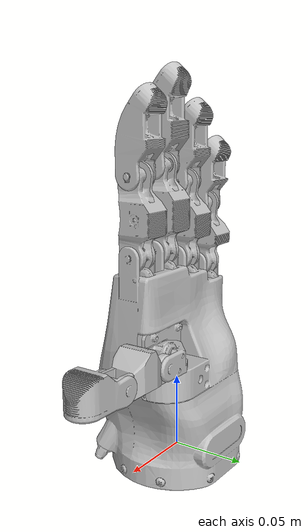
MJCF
<mujoco model="left_schunk_sih_hand-manipulator">
    <compiler angle="radian" meshdir="assets/left" autolimits="true"/>

    <default>
    <default class="left_hand">
      <mesh scale="0.001 0.001 0.001"/>
      <joint axis="1 0 0" damping="0.05" armature="0.0002" frictionloss="0.01"/>
      <position forcerange="-1 1"/>

      <default class="wrist">
        <joint damping="0.5"/>
        <default class="wrist_y">
          <joint axis="0 -1 0" range="-0.523599 0.174533"/>
          <position kp="10" ctrlrange="-0.523599 0.174533" forcerange="-10 10"/>
        </default>
        <default class="wrist_x">
          <joint range="-0.698132 0.488692"/>
          <position kp="8" ctrlrange="-0.698132 0.488692" forcerange="-5 5"/>
        </default>
      </default>

      <default class="thumb">
        <default class="thbase">
          <joint axis="0 0 1" range="-1.0472 1.0472"/>
          <position kp="0.4" ctrlrange="-1.0472 1.0472" forcerange="-3 3"/>
        </default>
        <default class="thproximal">
          <joint axis="-1 0 0" range="0 1.22173"/>
          <position ctrlrange="0 1.22173" forcerange="-2 2"/>
        </default>
        <default class="thhub">
          <joint axis="-1 0 0" range="-0.20944 0.20944"/>
          <position kp="0.5" ctrlrange="-0.20944 0.20944"/>
        </default>
        <default class="thmiddle">
          <joint axis="0 -1 0" range="-0.698132 0.698132"/>
          <position kp="1.5" ctrlrange="-0.698132 0.698132"/>
        </default>
        <default class="thdistal">
          <joint range="-0.261799 1.5708"/>
          <position ctrlrange="-0.261799 1.5708"/>
        </default>
      </default>

      <default class="metacarpal">
        <joint axis="0.573576 0 0.819152" range="0 0.785398"/>
        <position ctrlrange="0 0.785398"/>
      </default>
      <default class="knuckle">
        <joint axis="0 -1 0" range="-0.349066 0.349066"/>
        <position ctrlrange="-0.349066 0.349066"/>
      </default>
      <default class="proximal">
        <joint range="-0.261799 1.5708"/>
        <position ctrlrange="-0.261799 1.5708"/>
      </default>
      <default class="middle_distal">
        <joint range="0 1.5708"/>
        <position kp="0.5" ctrlrange="0 3.1415"/>
      </default>

      <default class="plastic">
        <geom solimp="0.5 0.99 0.0001" solref="0.005 1"/>
        <default class="plastic_visual">
          <geom type="mesh" material="black" contype="0" conaffinity="0" group="2"/>
        </default>
        <default class="plastic_collision">
          <geom group="3"/>
        </default>
      </default>
    </default>
  </default>

    <asset>
        <mesh name="palm" file="palm.stl" scale="0.001 0.001 0.001" />
        <mesh name="if_proximal" file="if_proximal.stl" scale="0.001 0.001 0.001" />
        <mesh name="if_distal" file="if_distal.stl" scale="0.001 0.001 0.001" />
        <mesh name="mf_proximal" file="mf_proximal.stl" scale="0.001 0.001 0.001" />
        <mesh name="mf_distal" file="mf_distal.stl" scale="0.001 0.001 0.001" />
        <mesh name="rf_proximal" file="rf_proximal.stl" scale="0.001 0.001 0.001" />
        <mesh name="rf_distal" file="rf_distal.stl" scale="0.001 0.001 0.001" />
        <mesh name="lf_proximal" file="lf_proximal.stl" scale="0.001 0.001 0.001" />
        <mesh name="lf_distal" file="lf_distal.stl" scale="0.001 0.001 0.001" />
        <mesh name="th_proximal" file="th_proximal.stl" scale="0.001 0.001 0.001" />
        <mesh name="th_inter" file="th_inter.stl" scale="0.001 0.001 0.001" />
        <mesh name="th_inter_cvx" file="th_inter_cvx.stl" scale="0.001 0.001 0.001" />
        <mesh name="th_distal" file="th_distal.stl" scale="0.001 0.001 0.001" />
    </asset>

    <worldbody>
        <geom type="mesh" contype="0" conaffinity="0" group="1" rgba="0.75 0.75 0.75 1" mesh="palm" />
        <geom type="mesh" rgba="0.75 0.75 0.75 1" mesh="palm" />
        <body name="if_proximal" pos="0.0435 0 0.141">
            <inertial pos="0 0 0" quat="0.820473 0.339851 -0.17592 0.424708" mass="0.1" diaginertia="0.0001 0.0001 0.0001" />
            <joint name="palm_to_if_proximal" pos="0 0 0" axis="1 0 0" limited="true" range="-1.571 0" damping="0.1" />
            <geom pos="-0.0435 0 -0.141" type="mesh" contype="0" conaffinity="0" group="1" rgba="0.75 0.75 0.75 1" mesh="if_proximal" />
            <geom pos="-0.0435 0 -0.141" type="mesh" rgba="0.75 0.75 0.75 1" mesh="if_proximal" />
            <body name="if_distal" pos="0 0 0.048">
                <inertial pos="0 0 0" quat="0.820473 0.339851 -0.17592 0.424708" mass="0.1" diaginertia="0.0001 0.0001 0.0001" />
                <joint name="if_proximal_to_if_distal" pos="0 0 0" axis="1 0 0" limited="true" range="-1.571 0" damping="0.1" />
                <geom pos="-0.0435 0 -0.189" type="mesh" contype="0" conaffinity="0" group="1" rgba="0.75 0.75 0.75 1" mesh="if_distal" />
                <geom pos="-0.0435 0 -0.189" type="mesh" rgba="0.75 0.75 0.75 1" mesh="if_distal" />
            </body>
        </body>
        <body name="mf_proximal" pos="0.0187 0 0.141">
            <inertial pos="0 0 0" quat="0.820473 0.339851 -0.17592 0.424708" mass="0.1" diaginertia="0.0001 0.0001 0.0001" />
            <joint name="palm_to_mf_proximal" pos="0 0 0" axis="1 0 0" limited="true" range="-1.571 0" damping="0.1" />
            <geom pos="-0.0187 0 -0.141" type="mesh" contype="0" conaffinity="0" group="1" rgba="0.75 0.75 0.75 1" mesh="mf_proximal" />
            <geom pos="-0.0187 0 -0.141" type="mesh" rgba="0.75 0.75 0.75 1" mesh="mf_proximal" />
            <body name="mf_distal" pos="0 0 0.0525">
                <inertial pos="0 0 0" quat="0.820473 0.339851 -0.17592 0.424708" mass="0.1" diaginertia="0.0001 0.0001 0.0001" />
                <joint name="mf_proximal_to_mf_distal" pos="0 0 0" axis="1 0 0" limited="true" range="-1.571 0" damping="0.1" />
                <geom pos="-0.0187 0 -0.1935" type="mesh" contype="0" conaffinity="0" group="1" rgba="0.75 0.75 0.75 1" mesh="mf_distal" />
                <geom pos="-0.0187 0 -0.1935" type="mesh" rgba="0.75 0.75 0.75 1" mesh="mf_distal" />
            </body>
        </body>
        <body name="rf_proximal" pos="-0.0069 0 0.134">
            <inertial pos="0 0 0" quat="0.820473 0.339851 -0.17592 0.424708" mass="0.1" diaginertia="0.0001 0.0001 0.0001" />
            <joint name="palm_to_rf_proximal" pos="0 0 0" axis="1 0 0" limited="true" range="-1.571 0" damping="0.1" />
            <geom pos="0.0069 0 -0.134" type="mesh" contype="0" conaffinity="0" group="1" rgba="0.75 0.75 0.75 1" mesh="rf_proximal" />
            <geom pos="0.0069 0 -0.134" type="mesh" rgba="0.75 0.75 0.75 1" mesh="rf_proximal" />
            <body name="rf_distal" pos="0 0 0.048">
                <inertial pos="0 0 0" quat="0.820473 0.339851 -0.17592 0.424708" mass="0.1" diaginertia="0.0001 0.0001 0.0001" />
                <joint name="rf_proximal_to_rf_distal" pos="0 0 0" axis="1 0 0" limited="true" range="-1.571 0" damping="0.1" />
                <geom pos="0.0069 0 -0.182" type="mesh" contype="0" conaffinity="0" group="1" rgba="0.75 0.75 0.75 1" mesh="rf_distal" />
                <geom pos="0.0069 0 -0.182" type="mesh" rgba="0.75 0.75 0.75 1" mesh="rf_distal" />
            </body>
        </body>
        <body name="lf_proximal" pos="-0.032 0 0.1254">
            <inertial pos="0 0 0" quat="0.820473 0.339851 -0.17592 0.424708" mass="0.1" diaginertia="0.0001 0.0001 0.0001" />
            <joint name="palm_to_lf_proximal" pos="0 0 0" axis="1 0 0" limited="true" range="-1.571 0" damping="0.1" />
            <geom pos="0.032 0 -0.1254" type="mesh" contype="0" conaffinity="0" group="1" rgba="0.75 0.75 0.75 1" mesh="lf_proximal" />
            <geom pos="0.032 0 -0.1254" type="mesh" rgba="0.75 0.75 0.75 1" mesh="lf_proximal" />
            <body name="lf_distal" pos="0 0 0.0401">
                <inertial pos="0 0 0" quat="0.820473 0.339851 -0.17592 0.424708" mass="0.1" diaginertia="0.0001 0.0001 0.0001" />
                <joint name="lf_proximal_to_lf_distal" pos="0 0 0" axis="1 0 0" limited="true" range="-1.571 0" damping="0.1" />
                <geom pos="0.032 0 -0.1655" type="mesh" contype="0" conaffinity="0" group="1" rgba="0.75 0.75 0.75 1" mesh="lf_distal" />
                <geom pos="0.032 0 -0.1655" type="mesh" rgba="0.75 0.75 0.75 1" mesh="lf_distal" />
            </body>
        </body>
        <body name="th_proximal" pos="0.034 0.019 0.08">
            <inertial pos="0 0 0" quat="0.820473 0.339851 -0.17592 0.424708" mass="0.1" diaginertia="0.0001 0.0001 0.0001" />
            <joint name="palm_to_th_proximal" pos="0 0 0" axis="0 0 1" limited="true" range="0 1.571" damping="0.1" />
            <geom pos="-0.034 -0.019 -0.08" type="mesh" contype="0" conaffinity="0" group="1" rgba="0.75 0.75 0.75 1" mesh="th_proximal" />
            <geom pos="-0.034 -0.019 -0.08" type="mesh" rgba="0.75 0.75 0.75 1" mesh="th_proximal" />
            <body name="th_inter" pos="0.024 0.005 0.001">
                <inertial pos="0 0 0" quat="0.820473 0.339851 -0.17592 0.424708" mass="0.1" diaginertia="0.0001 0.0001 0.0001" />
                <joint name="th_proximal_to_th_inter" pos="0 0 0" axis="0 1 0" limited="true" range="-1.571 0" damping="0.1" />
                <geom pos="-0.058 -0.024 -0.081" type="mesh" contype="0" conaffinity="0" group="1" rgba="0.75 0.75 0.75 1" mesh="th_inter" />
                <geom pos="-0.058 -0.024 -0.081" type="mesh" rgba="0.75 0.75 0.75 1" mesh="th_inter_cvx" />
                <body name="th_distal" pos="0.0391 0 0">
                    <inertial pos="0 0 0" quat="0.820473 0.339851 -0.17592 0.424708" mass="0.1" diaginertia="0.0001 0.0001 0.0001" />
                    <joint name="th_inter_to_th_distal" pos="0 0 0" axis="0 1 0" limited="true" range="-1.571 0" damping="0.1" />
                    <geom pos="-0.0971 -0.024 -0.081" type="mesh" contype="0" conaffinity="0" group="1" rgba="0.75 0.75 0.75 1" mesh="th_distal" />
                    <geom pos="-0.0971 -0.024 -0.081" type="mesh" rgba="0.75 0.75 0.75 1" mesh="th_distal" />
                </body>
            </body>
        </body>
    </worldbody>
</mujoco>
